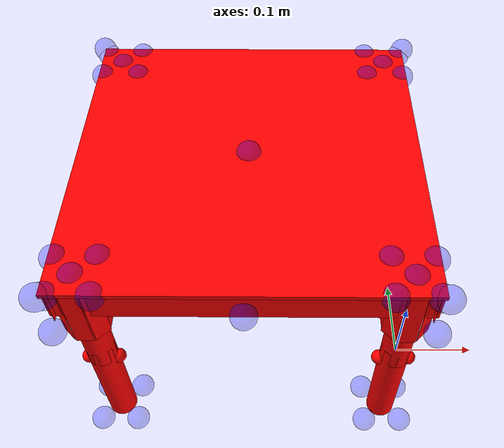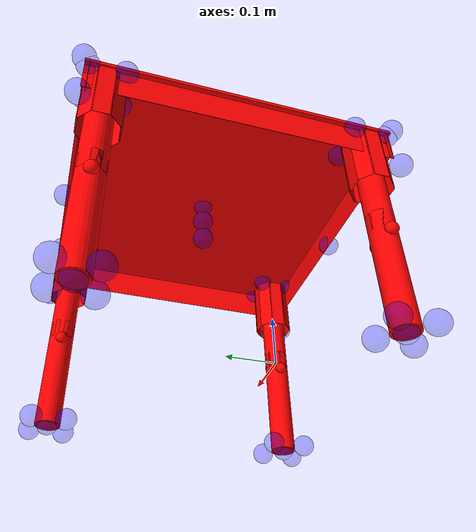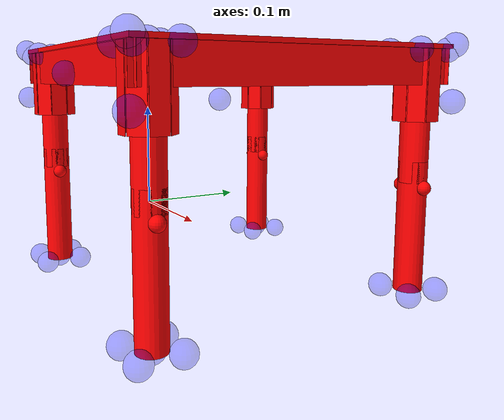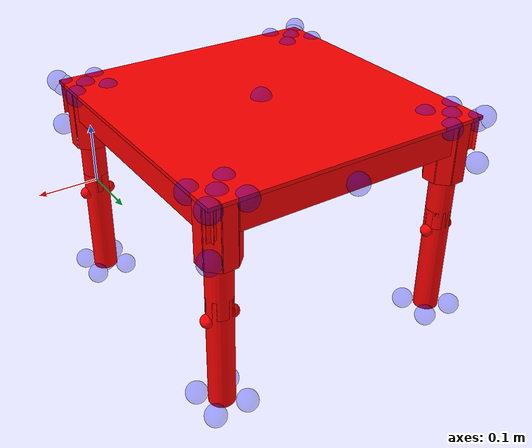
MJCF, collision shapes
<mujoco model="toy_table">
    <custom>
        <numeric name="4_part4_initpos" data="-0.3 -0.02 0.03878736 0.00 0.99997892 0.00649339 0"/>
        <numeric name="3_part3_initpos" data="0.44  0.08 0.02 -0.71 0.71 0 0"/>
        <numeric name="2_part2_initpos" data="0.32 0.08 0.02 -0.71 0.71 0 0"/>
        <numeric name="1_part1_initpos" data="0.2 0.08 0.02 -0.71 0.71 0 0"/>
        <numeric name="0_part0_initpos" data="0.08 0.08 0.02 -0.71 0.71 0 0"/>
    </custom>
    <asset>
        <mesh file="toy_table/0.stl" name="part0" scale="0.042 0.042 0.042"/>
        <mesh file="toy_table/4.stl" name="part4" scale="0.042 0.042 0.042"/>
        <mesh file="toy_table/3.stl" name="part3" scale="0.042 0.042 0.042"/>
        <mesh file="toy_table/2.stl" name="part2" scale="0.042 0.042 0.042"/>
        <mesh file="toy_table/1.stl" name="part1" scale="0.042 0.042 0.042"/>
    </asset>
    <equality>
        <weld active="false" body1="0_part0" body2="4_part4" solimp="1 1 0.5" solref="0.01 0.3"/>
        <weld active="false" body1="1_part1" body2="4_part4" solimp="1 1 0.5" solref="0.01 0.3"/>
        <weld active="false" body1="2_part2" body2="4_part4" solimp="1 1 0.5" solref="0.01 0.3"/>
        <weld active="false" body1="3_part3" body2="4_part4" solimp="1 1 0.5" solref="0.01 0.3"/>
    </equality>
    <worldbody>
        <body name="0_part0" pos="0.0 0.0 0.0" quat="1 0 0 0">
            <geom conaffinity="0" contype="0" density="0" mesh="part0" name="0_part0_mesh" pos="0.0 0.0 0.0"
                  rgba="0.82 0.71 0.55 1" type="mesh"/>
            <site name="0_part0_ltgt_site0" pos="0.02 0 -0.02" size="0.01 0.01 0.01" rgba="1 0 0 1" type="sphere"
                  group="1"></site>
            <site name="0_part0_rtgt_site0" pos="-0.02 0 -0.02" size="0.01 0.01 0.01" rgba="1 0 0 1" type="sphere"
                  group="1"></site>
            <site name="0_part0_horizontal_radius_site" pos="0.0 0.0 0.0" quat="1 0 0 0" rgba="0 0 1 0.3"
                  size="0.016800144133768378"/>
            <site name="0_part0_top_site" pos="0.0 0.0 0.16785563708678283" quat="1 0 0 0" rgba="0 0 1 0.3"
                  size="0.016800144133768378"/>
            <site name="0_part0_bottom_site" pos="0.0 0.0 -0.16785563708678283" quat="1 0 0 0" rgba="0 0 1 0.3"
                  size="0.016800144133768378"/>
            <site name="0_part0_corner_site8" pos="-0.02663028646967926 0.02663028646967926 0.16785563708678283"
                  quat="1 0 0 0" rgba="0 0 1 0.3" size="0.016800144133768378"/>
            <site name="0_part0_corner_site7" pos="0.02663028646967926 0.02663028646967926 0.16785563708678283"
                  quat="1 0 0 0" rgba="0 0 1 0.3" size="0.016800144133768378"/>
            <site name="0_part0_corner_site6" pos="0.02663028646967926 -0.02663028646967926 0.16785563708678283"
                  quat="1 0 0 0" rgba="0 0 1 0.3" size="0.016800144133768378"/>
            <site name="0_part0_corner_site5" pos="-0.02663028646967926 -0.02663028646967926 0.16785563708678283"
                  quat="1 0 0 0" rgba="0 0 1 0.3" size="0.016800144133768378"/>
            <site name="0_part0_corner_site4" pos="-0.02663028646967926 0.02663028646967926 -0.16785563708678283"
                  quat="1 0 0 0" rgba="0 0 1 0.3" size="0.016800144133768378"/>
            <site name="0_part0_corner_site3" pos="0.02663028646967926 0.02663028646967926 -0.16785563708678283"
                  quat="1 0 0 0" rgba="0 0 1 0.3" size="0.016800144133768378"/>
            <site name="0_part0_corner_site2" pos="0.02663028646967926 -0.02663028646967926 -0.16785563708678283"
                  quat="1 0 0 0" rgba="0 0 1 0.3" size="0.016800144133768378"/>
            <site name="0_part0_corner_site1" pos="-0.02663028646967926 -0.02663028646967926 -0.16785563708678283"
                  quat="1 0 0 0" rgba="0 0 1 0.3" size="0.016800144133768378"/>
            <site name="leg-top,,conn_site0" pos="0 0 0.165" quat="0 0 1 0" rgba="0.9019 0.0980 0.2941 0.3"
                  size="0.016800144133768378"/>
            <geom density="50" name="noviz_collision_0_part0_0" pos="0.0 0.0 0.0771358" quat="1 0 0 0" rgba="1 0 0 1"
                  size="0.02 0.090748" solref="0.001 1" type="cylinder"/>
            <geom density="50" name="noviz_collision_0_part0_1" pos="0.0 0.0 -0.0771358" quat="1 0 0 0" rgba="1 0 0 1"
                  size="0.02 0.093" solref="0.001 1" type="cylinder"/>
        </body>
        <body name="4_part4" pos="-0.19870370474214546 0.19870368374196531 0.13643401251069334" quat="1 0 0 0">
            <geom conaffinity="0" contype="0" density="0" mesh="part4" name="4_part4_mesh" pos="0.0 0.0 0.0"
                  rgba="0.82 0.71 0.55 1" type="mesh"/>
            <site name="4_part4_horizontal_radius_site" pos="0.0 0.0 0.0" quat="1 0 0 0" rgba="0 0 1 0.3"
                  size="0.016800144133768378"/>
            <site name="4_part4_top_site" pos="0.0 0.0 0.03774280480750086" quat="1 0 0 0" rgba="0 0 1 0.3"
                  size="0.016800144133768378"/>
            <site name="4_part4_bottom_site" pos="0.0 0.0 -0.03774280480750086" quat="1 0 0 0" rgba="0 0 1 0.3"
                  size="0.016800144133768378"/>
            <site name="4_part4_right_site" pos="0 0.23137183701242006 0.0" quat="1 0 0 0" rgba="0 0 1 0.3"
                  size="0.016800144133768378"/>
            <site name="4_part4_left_site" pos="0 -0.23137183701242006 0.0" quat="1 0 0 0" rgba="0 0 1 0.3"
                  size="0.016800144133768378"/>
            <site name="4_part4_corner_site8" pos="-0.23137183701242006 0.23137185801260024 0.03774280480750086"
                  quat="1 0 0 0" rgba="0 0 1 0.3" size="0.016800144133768378"/>
            <site name="4_part4_corner_site7" pos="0.23137183701242006 0.23137185801260024 0.03774280480750086"
                  quat="1 0 0 0" rgba="0 0 1 0.3" size="0.016800144133768378"/>
            <site name="4_part4_corner_site6" pos="0.23137183701242006 -0.23137185801260024 0.03774280480750086"
                  quat="1 0 0 0" rgba="0 0 1 0.3" size="0.016800144133768378"/>
            <site name="4_part4_corner_site5" pos="-0.23137183701242006 -0.23137185801260024 0.03774280480750086"
                  quat="1 0 0 0" rgba="0 0 1 0.3" size="0.016800144133768378"/>
            <site name="4_part4_corner_site4" pos="-0.23137183701242006 0.23137185801260024 -0.03774280480750086"
                  quat="1 0 0 0" rgba="0 0 1 0.3" size="0.016800144133768378"/>
            <site name="4_part4_corner_site3" pos="0.23137183701242006 0.23137185801260024 -0.03774280480750086"
                  quat="1 0 0 0" rgba="0 0 1 0.3" size="0.016800144133768378"/>
            <site name="4_part4_corner_site2" pos="0.23137183701242006 -0.23137185801260024 -0.03774280480750086"
                  quat="1 0 0 0" rgba="0 0 1 0.3" size="0.016800144133768378"/>
            <site name="4_part4_corner_site1" pos="-0.23137183701242006 -0.23137185801260024 -0.03774280480750086"
                  quat="1 0 0 0" rgba="0 0 1 0.3" size="0.016800144133768378"/>
            <site name="top-leg,,conn_site4" pos="0.198 0.198 -0.00" quat="0 0 1 0" rgba="0.9019 0.0980 0.2941 0.3"
                  size="0.01679342264788419"/>
            <site name="top-leg,,conn_site3" pos="0.198 -0.198 -0.00" quat="0 0 1 0" rgba="0.9019 0.0980 0.2941 0.3"
                  size="0.016800144133768374"/>
            <site name="top-leg,,conn_site2" pos="-0.198 -0.198 -0.00" quat="0 0 1 0" rgba="0.9019 0.0980 0.2941 0.3"
                  size="0.016800144133768374"/>
            <site name="top-leg,,conn_site1" pos="-0.198 0.198 -0.00" quat="0 0 1 0" rgba="0.9019 0.0980 0.2941 0.3"
                  size="0.016800144133768374"/>

            <geom density="50" name="noviz_collision_4_part4_0" pos="-0.198 0.168 -0.016" quat="1 0 0 0" rgba="1 0 0 1"
                  size="0.0115 0.0002 0.0485" solref="0.001 1" type="box"/>
            <geom density="50" name="noviz_collision_4_part4_1" pos="-0.198 0.228 -0.016" quat="1 0 0 0" rgba="1 0 0 1"
                  size="0.0115 0.0002 0.0485" solref="0.001 1" type="box"/>
            <geom density="50" name="noviz_collision_4_part4_2" pos="-0.219 0.177 -0.016"
                  quat="0.9238796 0 0 -0.3826834" rgba="1 0 0 1" size="0.0115 0.0002 0.0485" solref="0.001 1"
                  type="box"/>
            <geom density="50" name="noviz_collision_4_part4_3" pos="-0.168 0.198 -0.016"
                  quat="0.7071067 0 0 -0.7071068" rgba="1 0 0 1" size="0.0115 0.0002 0.0485" solref="0.001 1"
                  type="box"/>
            <geom density="50" name="noviz_collision_4_part4_4" pos="-0.228 0.198 -0.016"
                  quat="0.7071067 0 0 -0.7071068" rgba="1 0 0 1" size="0.0115 0.0002 0.0485" solref="0.001 1"
                  type="box"/>
            <geom density="50" name="noviz_collision_4_part4_5" pos="-0.177 0.219 -0.016"
                  quat="0.9238796 0 0 -0.3826834" rgba="1 0 0 1" size="0.0115 0.0002 0.0485" solref="0.001 1"
                  type="box"/>
            <geom density="50" name="noviz_collision_4_part4_6" pos="-0.219 0.219 -0.016" quat="0.9238796 0 0 0.3826834"
                  rgba="1 0 0 1" size="0.0115 0.0002 0.0485" solref="0.001 1" type="box"/>
            <geom density="50" name="noviz_collision_4_part4_7" pos="-0.177 0.177 -0.016" quat="0.9238796 0 0 0.3826834"
                  rgba="1 0 0 1" size="0.0115 0.0002 0.0485" solref="0.001 1" type="box"/>

            <geom density="50" name="noviz_collision_4_part4_8" pos="0.198 0.168 -0.016" quat="1 0 0 0" rgba="1 0 0 1"
                  size="0.0115 0.0002 0.0485" solref="0.001 1" type="box"/>
            <geom density="50" name="noviz_collision_4_part4_9" pos="0.198 0.228 -0.016" quat="1 0 0 0" rgba="1 0 0 1"
                  size="0.0115 0.0002 0.0485" solref="0.001 1" type="box"/>
            <geom density="50" name="noviz_collision_4_part4_10" pos="0.177 0.177 -0.016"
                  quat="0.9238796 0 0 -0.3826834" rgba="1 0 0 1" size="0.0115 0.0002 0.0485" solref="0.001 1"
                  type="box"/>
            <geom density="50" name="noviz_collision_4_part4_11" pos="0.228 0.198 -0.016"
                  quat="0.7071067 0 0 -0.7071068" rgba="1 0 0 1" size="0.0115 0.0002 0.0485" solref="0.001 1"
                  type="box"/>
            <geom density="50" name="noviz_collision_4_part4_12" pos="0.168 0.198 -0.016"
                  quat="0.7071067 0 0 -0.7071068" rgba="1 0 0 1" size="0.0115 0.0002 0.0485" solref="0.001 1"
                  type="box"/>
            <geom density="50" name="noviz_collision_4_part4_13" pos="0.219 0.219 -0.016"
                  quat="0.9238796 0 0 -0.3826834" rgba="1 0 0 1" size="0.0115 0.0002 0.0485" solref="0.001 1"
                  type="box"/>
            <geom density="50" name="noviz_collision_4_part4_14" pos="0.177 0.219 -0.016" quat="0.9238796 0 0 0.3826834"
                  rgba="1 0 0 1" size="0.0115 0.0002 0.0485" solref="0.001 1" type="box"/>
            <geom density="50" name="noviz_collision_4_part4_15" pos="0.219 0.177 -0.016" quat="0.9238796 0 0 0.3826834"
                  rgba="1 0 0 1" size="0.0115 0.0002 0.0485" solref="0.001 1" type="box"/>

            <geom density="50" name="noviz_collision_4_part4_16" pos="0.198 -0.228 -0.016" quat="1 0 0 0" rgba="1 0 0 1"
                  size="0.0115 0.0002 0.0485" solref="0.001 1" type="box"/>
            <geom density="50" name="noviz_collision_4_part4_17" pos="0.198 -0.170 -0.016" quat="1 0 0 0" rgba="1 0 0 1"
                  size="0.0115 0.0002 0.0485" solref="0.001 1" type="box"/>
            <geom density="50" name="noviz_collision_4_part4_18" pos="0.228 -0.198 -0.016"
                  quat="0.7071067 0 0 -0.7071068" rgba="1 0 0 1" size="0.0115 0.0002 0.0485" solref="0.001 1"
                  type="box"/>
            <geom density="50" name="noviz_collision_4_part4_19" pos="0.170 -0.198 -0.016"
                  quat="0.7071067 0 0 -0.7071068" rgba="1 0 0 1" size="0.0115 0.0002 0.0485" solref="0.001 1"
                  type="box"/>
            <geom density="50" name="noviz_collision_4_part4_20" pos="0.219 -0.219 -0.016"
                  quat="0.9238796 0 0 0.3826834" rgba="1 0 0 1" size="0.0115 0.0002 0.0485" solref="0.001 1"
                  type="box"/>
            <geom density="50" name="noviz_collision_4_part4_21" pos="0.219 -0.177 -0.016"
                  quat="0.9238796 0 0 -0.3826834" rgba="1 0 0 1" size="0.0115 0.0002 0.0485" solref="0.001 1"
                  type="box"/>
            <geom density="50" name="noviz_collision_4_part4_22" pos="0.177 -0.219 -0.016"
                  quat="0.9238796 0 0 -0.3826834" rgba="1 0 0 1" size="0.0115 0.0002 0.0485" solref="0.001 1"
                  type="box"/>
            <geom density="50" name="noviz_collision_4_part4_23" pos="0.177 -0.177 -0.016"
                  quat="0.9238796 0 0 0.3826834" rgba="1 0 0 1" size="0.0115 0.0002 0.0485" solref="0.001 1"
                  type="box"/>

            <geom density="50" name="noviz_collision_4_part4_24" pos="-0.219 -0.177 -0.016"
                  quat="0.9238796 0 0 0.3826834" rgba="1 0 0 1" size="0.0115 0.0002 0.0485" solref="0.001 1"
                  type="box"/>
            <geom density="50" name="noviz_collision_4_part4_25" pos="-0.198 -0.170 -0.016" quat="1 0 0 0"
                  rgba="1 0 0 1" size="0.0115 0.0002 0.0485" solref="0.001 1" type="box"/>
            <geom density="50" name="noviz_collision_4_part4_26" pos="-0.198 -0.228 -0.016" quat="1 0 0 0"
                  rgba="1 0 0 1" size="0.0115 0.0002 0.0485" solref="0.001 1" type="box"/>
            <geom density="50" name="noviz_collision_4_part4_27" pos="-0.170 -0.198 -0.016"
                  quat="0.7071067 0 0 -0.7071068" rgba="1 0 0 1" size="0.0115 0.0002 0.0485" solref="0.001 1"
                  type="box"/>
            <geom density="50" name="noviz_collision_4_part4_28" pos="-0.228 -0.198 -0.016"
                  quat="0.7071067 0 0 -0.7071068" rgba="1 0 0 1" size="0.0115 0.0002 0.0485" solref="0.001 1"
                  type="box"/>
            <geom density="50" name="noviz_collision_4_part4_29" pos="-0.177 -0.219 -0.016"
                  quat="0.9238796 0 0 0.3826834" rgba="1 0 0 1" size="0.0115 0.0002 0.0485" solref="0.001 1"
                  type="box"/>
            <geom density="50" name="noviz_collision_4_part4_30" pos="-0.219 -0.219 -0.016"
                  quat="0.9238796 0 0 -0.3826834" rgba="1 0 0 1" size="0.0115 0.0002 0.0485" solref="0.001 1"
                  type="box"/>
            <geom density="50" name="noviz_collision_4_part4_31" pos="-0.177 -0.177 -0.016"
                  quat="0.9238796 0 0 -0.3826834" rgba="1 0 0 1" size="0.0115 0.0002 0.0485" solref="0.001 1"
                  type="box"/>

            <geom density="50" name="noviz_collision_4_part4_32" pos="0.0 0.0 0.036" quat="1 0 0 0" rgba="1 0 0 1"
                  size="0.230 0.230 0.003" solref="0.001 1" type="box"/>
            <geom density="50" name="noviz_collision_4_part4_33" pos="0 -0.223 0.011" quat="1 0 0 0" rgba="1 0 0 1"
                  size="0.23 0.0002 0.026" solref="0.001 1" type="box"/>
            <geom density="50" name="noviz_collision_4_part4_34" pos="0 0.223 0.011" quat="1 0 0 0" rgba="1 0 0 1"
                  size="0.23 0.0002 0.026" solref="0.001 1" type="box"/>
            <geom density="50" name="noviz_collision_4_part4_35" pos="0.223 0 0.011" quat="0.7071067 0 0 -0.7071068"
                  rgba="1 0 0 1" size="0.23 0.0002 0.026" solref="0.001 1" type="box"/>
            <geom density="50" name="noviz_collision_4_part4_36" pos="-0.223 0 0.011" quat="0.7071067 0 0 -0.7071068"
                  rgba="1 0 0 1" size="0.23 0.0002 0.026" solref="0.001 1" type="box"/>

            <geom density="50" name="noviz_collision_4_part4_37" pos="-0.198 -0.198 0.01" quat="1 0 0 0" rgba="1 0 0 1"
                  size="0.028 0.01" solref="0.001 1" type="cylinder"/>
            <geom density="50" name="noviz_collision_4_part4_38" pos="-0.198 0.198 0.01" quat="1 0 0 0" rgba="1 0 0 1"
                  size="0.028 0.01" solref="0.001 1" type="cylinder"/>
            <geom density="50" name="noviz_collision_4_part4_39" pos="0.198 -0.198 0.01" quat="1 0 0 0" rgba="1 0 0 1"
                  size="0.028 0.01" solref="0.001 1" type="cylinder"/>
            <geom density="50" name="noviz_collision_4_part4_40" pos="0.198 0.198 0.01" quat="1 0 0 0" rgba="1 0 0 1"
                  size="0.028 0.01" solref="0.001 1" type="cylinder"/>
        </body>
        <body name="3_part3" pos="-0.39740740948429093 0.0 0.0" quat="1 0 0 0">
            <geom conaffinity="0" contype="0" density="0" mesh="part3" name="3_part3_mesh" pos="0.0 0.0 0.0"
                  rgba="0.82 0.71 0.55 1" type="mesh"/>
            <site name="3_part3_ltgt_site0" pos="0.02 0 -0.02" size="0.01 0.01 0.01" rgba="1 0 0 1" type="sphere"
                  group="1"></site>
            <site name="3_part3_rtgt_site0" pos="-0.02 0 -0.02" size="0.01 0.01 0.01" rgba="1 0 0 1" type="sphere"
                  group="1"></site>
            <site name="3_part3_horizontal_radius_site" pos="0.0 0.0 0.0" quat="1 0 0 0" rgba="0 0 1 0.3"
                  size="0.016800144133768378"/>
            <site name="3_part3_top_site" pos="0.0 0.0 0.16785563708678283" quat="1 0 0 0" rgba="0 0 1 0.3"
                  size="0.016800144133768378"/>
            <site name="3_part3_bottom_site" pos="0.0 0.0 -0.16785563708678283" quat="1 0 0 0" rgba="0 0 1 0.3"
                  size="0.016800144133768378"/>
            <site name="3_part3_corner_site8" pos="-0.02663028646967926 0.02663028646967926 0.16785563708678283"
                  quat="1 0 0 0" rgba="0 0 1 0.3" size="0.016800144133768378"/>
            <site name="3_part3_corner_site7" pos="0.02663028646967926 0.02663028646967926 0.16785563708678283"
                  quat="1 0 0 0" rgba="0 0 1 0.3" size="0.016800144133768378"/>
            <site name="3_part3_corner_site6" pos="0.02663028646967926 -0.02663028646967926 0.16785563708678283"
                  quat="1 0 0 0" rgba="0 0 1 0.3" size="0.016800144133768378"/>
            <site name="3_part3_corner_site5" pos="-0.02663028646967926 -0.02663028646967926 0.16785563708678283"
                  quat="1 0 0 0" rgba="0 0 1 0.3" size="0.016800144133768378"/>
            <site name="3_part3_corner_site4" pos="-0.02663028646967926 0.02663028646967926 -0.16785563708678283"
                  quat="1 0 0 0" rgba="0 0 1 0.3" size="0.016800144133768378"/>
            <site name="3_part3_corner_site3" pos="0.02663028646967926 0.02663028646967926 -0.16785563708678283"
                  quat="1 0 0 0" rgba="0 0 1 0.3" size="0.016800144133768378"/>
            <site name="3_part3_corner_site2" pos="0.02663028646967926 -0.02663028646967926 -0.16785563708678283"
                  quat="1 0 0 0" rgba="0 0 1 0.3" size="0.016800144133768378"/>
            <site name="3_part3_corner_site1" pos="-0.02663028646967926 -0.02663028646967926 -0.16785563708678283"
                  quat="1 0 0 0" rgba="0 0 1 0.3" size="0.016800144133768378"/>
            <site name="leg-top,,conn_site3" pos="0 0 0.165" quat="0 0 1 0" rgba="0.9019 0.0980 0.2941 0.3"
                  size="0.016800144133768374"/>
            <geom density="50" name="noviz_collision_3_part3_0" pos="0.0 0.0 0.0771358" quat="1 0 0 0" rgba="1 0 0 1"
                  size="0.02 0.090748" solref="0.001 1" type="cylinder"/>
            <geom density="50" name="noviz_collision_3_part3_1" pos="0.0 0.0 -0.0771358" quat="1 0 0 0" rgba="1 0 0 1"
                  size="0.02 0.093" solref="0.001 1" type="cylinder"/>
        </body>
        <body name="2_part2" pos="0.0 0.39740740948429093 -0.0" quat="1 0 0 0">
            <geom conaffinity="0" contype="0" density="0" mesh="part2" name="2_part2_mesh" pos="0.0 0.0 0.0"
                  rgba="0.82 0.71 0.55 1" type="mesh"/>
            <site name="2_part2_ltgt_site0" pos="0.02 0 -0.02" size="0.01 0.01 0.01" rgba="1 0 0 1" type="sphere"
                  group="1"></site>
            <site name="2_part2_rtgt_site0" pos="-0.02 0 -0.02" size="0.01 0.01 0.01" rgba="1 0 0 1" type="sphere"
                  group="1"></site>
            <site name="2_part2_horizontal_radius_site" pos="0.0 0.0 0.0" quat="1 0 0 0" rgba="0 0 1 0.3"
                  size="0.016800144133768378"/>
            <site name="2_part2_top_site" pos="0.0 0.0 0.16785563708678283" quat="1 0 0 0" rgba="0 0 1 0.3"
                  size="0.016800144133768378"/>
            <site name="2_part2_bottom_site" pos="0.0 0.0 -0.16785563708678283" quat="1 0 0 0" rgba="0 0 1 0.3"
                  size="0.016800144133768378"/>
            <site name="2_part2_corner_site8" pos="-0.02663028646967926 0.02663028646967926 0.16785563708678283"
                  quat="1 0 0 0" rgba="0 0 1 0.3" size="0.016800144133768378"/>
            <site name="2_part2_corner_site7" pos="0.02663028646967926 0.02663028646967926 0.16785563708678283"
                  quat="1 0 0 0" rgba="0 0 1 0.3" size="0.016800144133768378"/>
            <site name="2_part2_corner_site6" pos="0.02663028646967926 -0.02663028646967926 0.16785563708678283"
                  quat="1 0 0 0" rgba="0 0 1 0.3" size="0.016800144133768378"/>
            <site name="2_part2_corner_site5" pos="-0.02663028646967926 -0.02663028646967926 0.16785563708678283"
                  quat="1 0 0 0" rgba="0 0 1 0.3" size="0.016800144133768378"/>
            <site name="2_part2_corner_site4" pos="-0.02663028646967926 0.02663028646967926 -0.16785563708678283"
                  quat="1 0 0 0" rgba="0 0 1 0.3" size="0.016800144133768378"/>
            <site name="2_part2_corner_site3" pos="0.02663028646967926 0.02663028646967926 -0.16785563708678283"
                  quat="1 0 0 0" rgba="0 0 1 0.3" size="0.016800144133768378"/>
            <site name="2_part2_corner_site2" pos="0.02663028646967926 -0.02663028646967926 -0.16785563708678283"
                  quat="1 0 0 0" rgba="0 0 1 0.3" size="0.016800144133768378"/>
            <site name="2_part2_corner_site1" pos="-0.02663028646967926 -0.02663028646967926 -0.16785563708678283"
                  quat="1 0 0 0" rgba="0 0 1 0.3" size="0.016800144133768378"/>
            <site name="leg-top,,conn_site2" pos="0 0 0.165" quat="0 0 1 0" rgba="0.9019 0.0980 0.2941 0.3"
                  size="0.016800144133768374"/>
            <geom density="20" name="noviz_collision_2_part2_0" pos="0.0 0.0 0.0771358" quat="1 0 0 0" rgba="1 0 0 1"
                  size="0.02 0.090748" solref="0.001 1" type="cylinder"/>
            <geom density="20" name="noviz_collision_2_part2_1" pos="0.0 0.0 -0.0771358" quat="1 0 0 0" rgba="1 0 0 1"
                  size="0.02 0.093" solref="0.001 1" type="cylinder"/>
        </body>
        <body name="1_part1" pos="-0.39740740948429093 0.39740740948429093 -0.0" quat="1 0 0 0">
            <geom conaffinity="0" contype="0" density="01" mesh="part1" name="1_part1_mesh" pos="0.0 0.0 0.0"
                  rgba="0.82 0.71 0.55 1" type="mesh"/>
            <site name="1_part1_ltgt_site0" pos="0.02 0 -0.02" size="0.01 0.01 0.01" rgba="1 0 0 1" type="sphere"
                  group="1"></site>
            <site name="1_part1_rtgt_site0" pos="-0.02 0 -0.02" size="0.01 0.01 0.01" rgba="1 0 0 1" type="sphere"
                  group="1"></site>
            <site name="1_part1_horizontal_radius_site" pos="0.0 0.0 0.0" quat="1 0 0 0" rgba="0 0 1 0.3"
                  size="0.016800144133768378"/>
            <site name="1_part1_top_site" pos="0.0 0.0 0.16785563708678283" quat="1 0 0 0" rgba="0 0 1 0.3"
                  size="0.016800144133768378"/>
            <site name="1_part1_bottom_site" pos="0.0 0.0 -0.16785563708678283" quat="1 0 0 0" rgba="0 0 1 0.3"
                  size="0.016800144133768378"/>
            <site name="1_part1_corner_site8" pos="-0.02663028646967926 0.02663028646967926 0.16785563708678283"
                  quat="1 0 0 0" rgba="0 0 1 0.3" size="0.016800144133768378"/>
            <site name="1_part1_corner_site7" pos="0.02663028646967926 0.02663028646967926 0.16785563708678283"
                  quat="1 0 0 0" rgba="0 0 1 0.3" size="0.016800144133768378"/>
            <site name="1_part1_corner_site6" pos="0.02663028646967926 -0.02663028646967926 0.16785563708678283"
                  quat="1 0 0 0" rgba="0 0 1 0.3" size="0.016800144133768378"/>
            <site name="1_part1_corner_site5" pos="-0.02663028646967926 -0.02663028646967926 0.16785563708678283"
                  quat="1 0 0 0" rgba="0 0 1 0.3" size="0.016800144133768378"/>
            <site name="1_part1_corner_site4" pos="-0.02663028646967926 0.02663028646967926 -0.16785563708678283"
                  quat="1 0 0 0" rgba="0 0 1 0.3" size="0.016800144133768378"/>
            <site name="1_part1_corner_site3" pos="0.02663028646967926 0.02663028646967926 -0.16785563708678283"
                  quat="1 0 0 0" rgba="0 0 1 0.3" size="0.016800144133768378"/>
            <site name="1_part1_corner_site2" pos="0.02663028646967926 -0.02663028646967926 -0.16785563708678283"
                  quat="1 0 0 0" rgba="0 0 1 0.3" size="0.016800144133768378"/>
            <site name="1_part1_corner_site1" pos="-0.02663028646967926 -0.02663028646967926 -0.16785563708678283"
                  quat="1 0 0 0" rgba="0 0 1 0.3" size="0.016800144133768378"/>
            <site name="leg-top,,conn_site1" pos="0 0 0.165" quat="0 0 1 0" rgba="0.9019 0.0980 0.2941 0.3"
                  size="0.016800144133768374"/>
            <geom density="50" name="noviz_collision_1_part1_0" pos="0.0 0.0 0.0771358" quat="1 0 0 0" rgba="1 0 0 1"
                  size="0.02 0.090748" solref="0.001 1" type="cylinder"/>
            <geom density="50" name="noviz_collision_1_part1_1" pos="0.0 0.0 -0.0771358" quat="1 0 0 0" rgba="1 0 0 1"
                  size="0.02 0.093" solref="0.001 1" type="cylinder"/>
        </body>
    </worldbody>
</mujoco>
